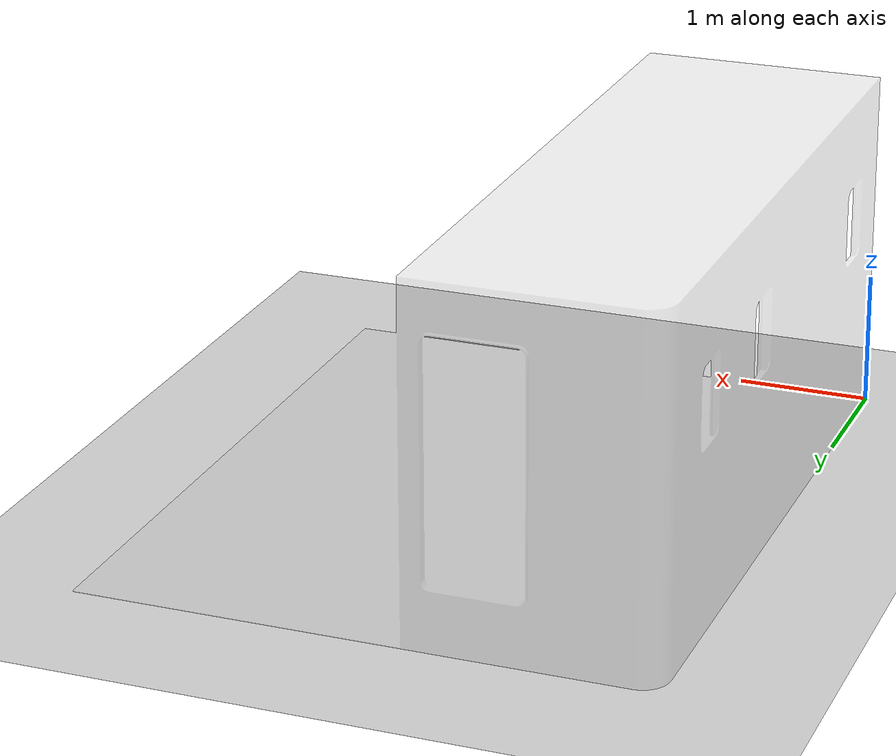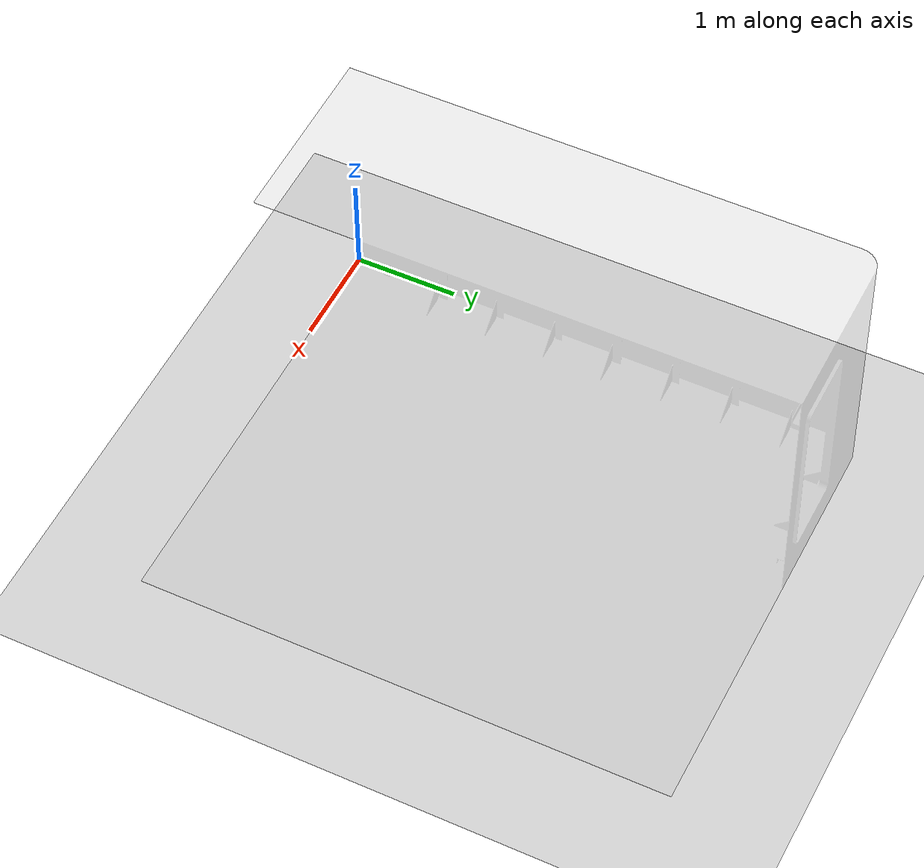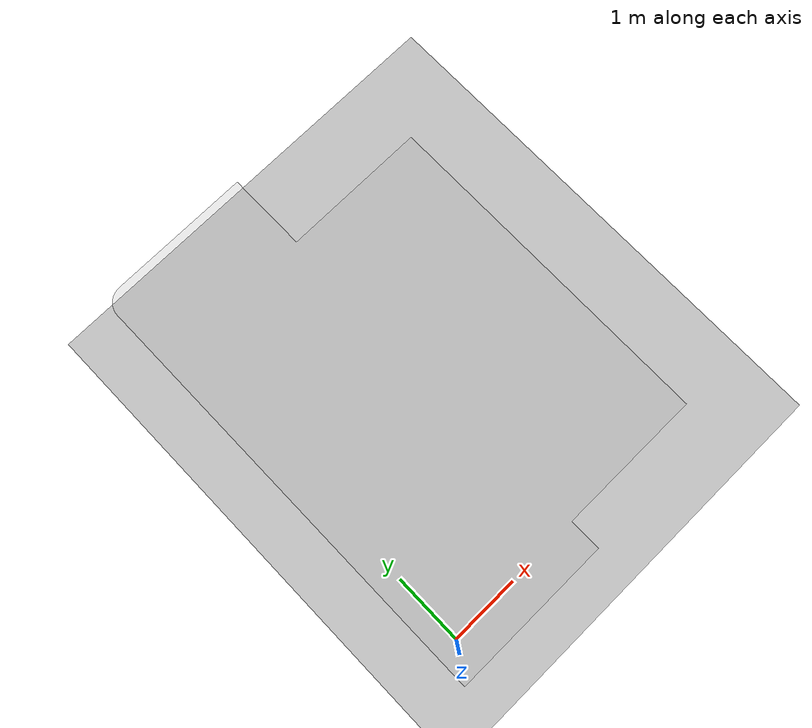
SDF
<sdf version="1.4">
	<world name="default">
		<physics type='ode'>
			<gravity>0 0 -1</gravity>
			<ode>
				<solver>
					<type>quick</type>
					<iters>20</iters>
					<sor>1</sor>
				</solver>
				<constraints>
					<cfm>0</cfm>
					<erp>0.2</erp>
					<contact_max_correcting_vel>100</contact_max_correcting_vel>
					<contact_surface_layer>0</contact_surface_layer>
				</constraints>
			</ode>
			<max_step_size>0.003</max_step_size>
			<real_time_factor>1</real_time_factor>
			<real_time_update_rate>1000</real_time_update_rate>
		</physics>

		<scene>
			<grid>false</grid>
		</scene>

		<light name='sun' type='directional'>
			<cast_shadows>1</cast_shadows>
			<pose>2 0 10 0 -0 0</pose>
			<diffuse>0.8 0.8 0.8 1</diffuse>
			<specular>0.2 0.2 0.2 1</specular>
			<attenuation>
				<range>1000</range>
				<constant>0.9</constant>
				<linear>0.01</linear>
				<quadratic>0.001</quadratic>
			</attenuation>
			<direction>-0.5 0.1 -0.9</direction>
		</light>

		<include>
			<uri>model://ground_plane</uri>
		</include>

		<model name="ship_interior_corner">
			<pose>0.0 0.0 0.0 0.0 0.0 0</pose>
			<static>true</static>
			<link name="body">
				<visual name="visual">
					<transparency>0.75</transparency>
					<geometry>
						<mesh>
							<uri>model://ship_interior_corner/meshes/ship_interior_corner.stl</uri>
						</mesh>
					</geometry>
				</visual>
				<collision name="collision">
					<geometry>
						<mesh>
							<uri>model://ship_interior_corner/meshes/ship_interior_corner.stl</uri>
						</mesh>
					</geometry>
				</collision>
			</link>
		</model>

		<gui fullscreen='0'>
			<camera name='user_camera'>
				<pose>-1.19228 2.00371 15.0605 3.14159 1.57079 3.14159</pose>
				<view_controller>orbit</view_controller>
			</camera>
		</gui>
	</world>
</sdf>
